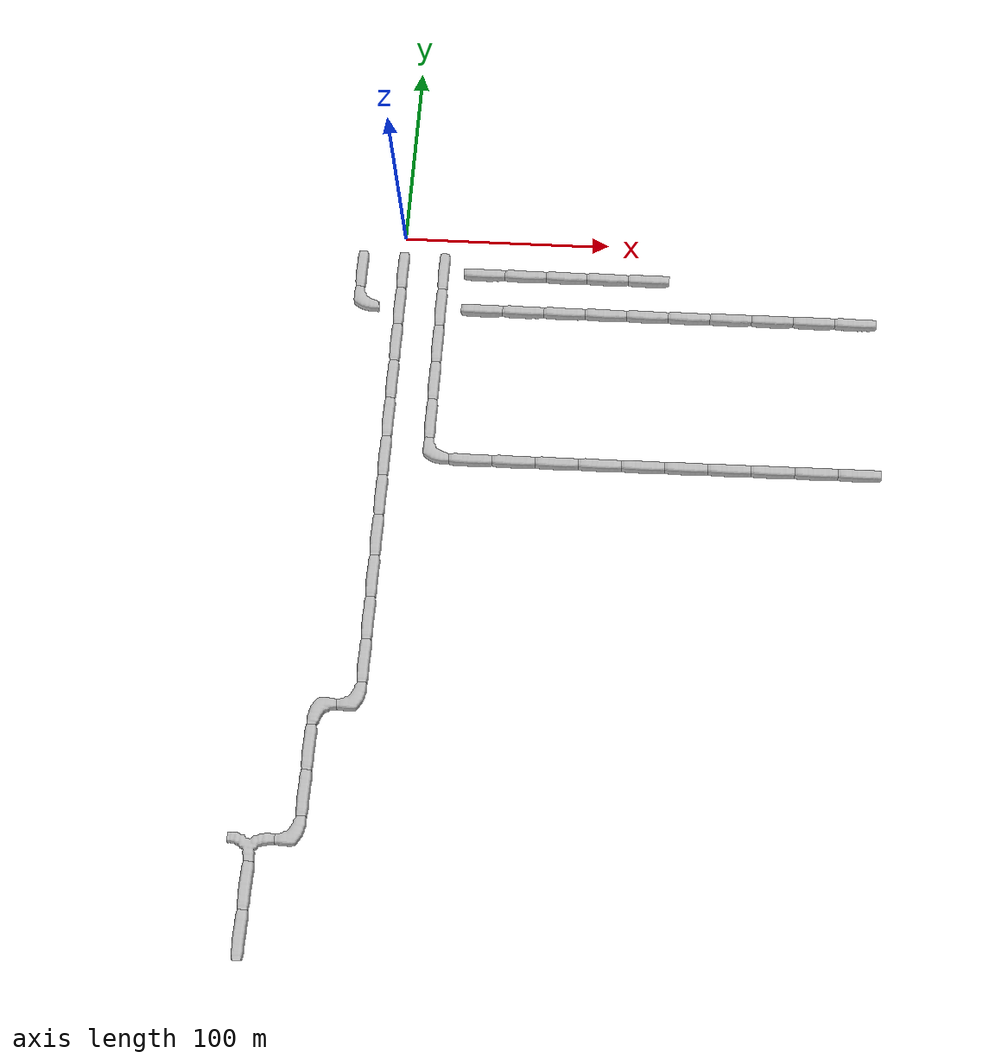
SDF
<sdf version="1.6">
 <world name="cave_8000_16">
  <include>
   <static>true</static>
   <name>cave_1_-1</name>
   <pose>20 -20 0 0 0 0.0</pose>
   <uri>model://cave_straight_20m</uri>
  </include>
  <include>
   <static>true</static>
   <name>cave_1_-2</name>
   <pose>20 -40 0 0 0 0.0</pose>
   <uri>model://cave_straight_20m</uri>
  </include>
  <include>
   <static>true</static>
   <name>cave_1_-3</name>
   <pose>20 -60 0 0 0 0.0</pose>
   <uri>model://cave_straight_20m</uri>
  </include>
  <include>
   <static>true</static>
   <name>cave_1_-4</name>
   <pose>20 -80 0 0 0 0.0</pose>
   <uri>model://cave_straight_20m</uri>
  </include>
  <include>
   <static>true</static>
   <name>cave_1_-5</name>
   <pose>20 -100 0 0 0 0.0</pose>
   <uri>model://cave_straight_20m</uri>
  </include>
  <include>
   <static>true</static>
   <name>cave_1_-6</name>
   <pose>20 -120 0 0 0 0.0</pose>
   <uri>model://cave_L_20m</uri>
  </include>
  <include>
   <static>true</static>
   <name>cave_2_-6</name>
   <pose>40 -120 0 0 0 1.5707963267948966</pose>
   <uri>model://cave_straight_20m</uri>
  </include>
  <include>
   <static>true</static>
   <name>cave_3_-6</name>
   <pose>60 -120 0 0 0 1.5707963267948966</pose>
   <uri>model://cave_straight_20m</uri>
  </include>
  <include>
   <static>true</static>
   <name>cave_4_-6</name>
   <pose>80 -120 0 0 0 1.5707963267948966</pose>
   <uri>model://cave_straight_20m</uri>
  </include>
  <include>
   <static>true</static>
   <name>cave_5_-6</name>
   <pose>100 -120 0 0 0 1.5707963267948966</pose>
   <uri>model://cave_straight_20m</uri>
  </include>
  <include>
   <static>true</static>
   <name>cave_6_-6</name>
   <pose>120 -120 0 0 0 1.5707963267948966</pose>
   <uri>model://cave_straight_20m</uri>
  </include>
  <include>
   <static>true</static>
   <name>cave_7_-6</name>
   <pose>140 -120 0 0 0 1.5707963267948966</pose>
   <uri>model://cave_straight_20m</uri>
  </include>
  <include>
   <static>true</static>
   <name>cave_8_-6</name>
   <pose>160 -120 0 0 0 1.5707963267948966</pose>
   <uri>model://cave_straight_20m</uri>
  </include>
  <include>
   <static>true</static>
   <name>cave_9_-6</name>
   <pose>180 -120 0 0 0 1.5707963267948966</pose>
   <uri>model://cave_straight_20m</uri>
  </include>
  <include>
   <static>true</static>
   <name>cave_10_-6</name>
   <pose>200 -120 0 0 0 1.5707963267948966</pose>
   <uri>model://cave_straight_20m</uri>
  </include>
  <include>
   <static>true</static>
   <name>cave_11_-6</name>
   <pose>220 -120 0 0 0 1.5707963267948966</pose>
   <uri>model://cave_straight_20m</uri>
  </include>
  <include>
   <static>true</static>
   <name>cave_6_-1</name>
   <pose>120 -20 0 0 0 1.5707963267948966</pose>
   <uri>model://cave_straight_20m</uri>
  </include>
  <include>
   <static>true</static>
   <name>cave_5_-1</name>
   <pose>100 -20 0 0 0 1.5707963267948966</pose>
   <uri>model://cave_straight_20m</uri>
  </include>
  <include>
   <static>true</static>
   <name>cave_4_-1</name>
   <pose>80 -20 0 0 0 1.5707963267948966</pose>
   <uri>model://cave_straight_20m</uri>
  </include>
  <include>
   <static>true</static>
   <name>cave_3_-1</name>
   <pose>60 -20 0 0 0 1.5707963267948966</pose>
   <uri>model://cave_straight_20m</uri>
  </include>
  <include>
   <static>true</static>
   <name>cave_2_-1</name>
   <pose>40 -20 0 0 0 1.5707963267948966</pose>
   <uri>model://cave_straight_20m</uri>
  </include>
  <include>
   <static>true</static>
   <name>cave_11_-2</name>
   <pose>220 -40 0 0 0 1.5707963267948966</pose>
   <uri>model://cave_straight_20m</uri>
  </include>
  <include>
   <static>true</static>
   <name>cave_10_-2</name>
   <pose>200 -40 0 0 0 1.5707963267948966</pose>
   <uri>model://cave_straight_20m</uri>
  </include>
  <include>
   <static>true</static>
   <name>cave_9_-2</name>
   <pose>180 -40 0 0 0 1.5707963267948966</pose>
   <uri>model://cave_straight_20m</uri>
  </include>
  <include>
   <static>true</static>
   <name>cave_8_-2</name>
   <pose>160 -40 0 0 0 1.5707963267948966</pose>
   <uri>model://cave_straight_20m</uri>
  </include>
  <include>
   <static>true</static>
   <name>cave_7_-2</name>
   <pose>140 -40 0 0 0 1.5707963267948966</pose>
   <uri>model://cave_straight_20m</uri>
  </include>
  <include>
   <static>true</static>
   <name>cave_6_-2</name>
   <pose>120 -40 0 0 0 1.5707963267948966</pose>
   <uri>model://cave_straight_20m</uri>
  </include>
  <include>
   <static>true</static>
   <name>cave_5_-2</name>
   <pose>100 -40 0 0 0 1.5707963267948966</pose>
   <uri>model://cave_straight_20m</uri>
  </include>
  <include>
   <static>true</static>
   <name>cave_4_-2</name>
   <pose>80 -40 0 0 0 1.5707963267948966</pose>
   <uri>model://cave_straight_20m</uri>
  </include>
  <include>
   <static>true</static>
   <name>cave_3_-2</name>
   <pose>60 -40 0 0 0 1.5707963267948966</pose>
   <uri>model://cave_straight_20m</uri>
  </include>
  <include>
   <static>true</static>
   <name>cave_2_-2</name>
   <pose>40 -40 0 0 0 1.5707963267948966</pose>
   <uri>model://cave_straight_20m</uri>
  </include>
  <include>
   <static>true</static>
   <name>cave_0_-1</name>
   <pose>0 -20 0 0 0 0.0</pose>
   <uri>model://cave_straight_20m</uri>
  </include>
  <include>
   <static>true</static>
   <name>cave_0_-2</name>
   <pose>0 -40 0 0 0 0.0</pose>
   <uri>model://cave_straight_20m</uri>
  </include>
  <include>
   <static>true</static>
   <name>cave_0_-3</name>
   <pose>0 -60 0 0 0 0.0</pose>
   <uri>model://cave_straight_20m</uri>
  </include>
  <include>
   <static>true</static>
   <name>cave_0_-4</name>
   <pose>0 -80 0 0 0 0.0</pose>
   <uri>model://cave_straight_20m</uri>
  </include>
  <include>
   <static>true</static>
   <name>cave_0_-5</name>
   <pose>0 -100 0 0 0 0.0</pose>
   <uri>model://cave_straight_20m</uri>
  </include>
  <include>
   <static>true</static>
   <name>cave_0_-6</name>
   <pose>0 -120 0 0 0 0.0</pose>
   <uri>model://cave_straight_20m</uri>
  </include>
  <include>
   <static>true</static>
   <name>cave_0_-7</name>
   <pose>0 -140 0 0 0 0.0</pose>
   <uri>model://cave_straight_20m</uri>
  </include>
  <include>
   <static>true</static>
   <name>cave_0_-8</name>
   <pose>0 -160 0 0 0 0.0</pose>
   <uri>model://cave_straight_20m</uri>
  </include>
  <include>
   <static>true</static>
   <name>cave_0_-9</name>
   <pose>0 -180 0 0 0 0.0</pose>
   <uri>model://cave_straight_20m</uri>
  </include>
  <include>
   <static>true</static>
   <name>cave_0_-10</name>
   <pose>0 -200 0 0 0 0.0</pose>
   <uri>model://cave_straight_20m</uri>
  </include>
  <include>
   <static>true</static>
   <name>cave_0_-11</name>
   <pose>0 -220 0 0 0 0.0</pose>
   <uri>model://cave_straight_20m</uri>
  </include>
  <include>
   <static>true</static>
   <name>cave_0_-12</name>
   <pose>0 -240 0 0 0 1.5707963267948966</pose>
   <uri>model://cave_L_20m</uri>
  </include>
  <include>
   <static>true</static>
   <name>cave_-1_-12</name>
   <pose>-20 -240 0 0 0 -1.5707963267948966</pose>
   <uri>model://cave_L_20m</uri>
  </include>
  <include>
   <static>true</static>
   <name>cave_-1_-13</name>
   <pose>-20 -260 0 0 0 0.0</pose>
   <uri>model://cave_straight_20m</uri>
  </include>
  <include>
   <static>true</static>
   <name>cave_-1_-14</name>
   <pose>-20 -280 0 0 0 0.0</pose>
   <uri>model://cave_straight_20m</uri>
  </include>
  <include>
   <static>true</static>
   <name>cave_-1_-15</name>
   <pose>-20 -300 0 0 0 1.5707963267948966</pose>
   <uri>model://cave_L_20m</uri>
  </include>
  <include>
   <static>true</static>
   <name>cave_-2_-15</name>
   <pose>-40 -300 0 0 0 3.141592653589793</pose>
   <uri>model://cave_3way_20m</uri>
  </include>
  <include>
   <static>true</static>
   <name>cave_-2_-16</name>
   <pose>-40 -320 0 0 0 0.0</pose>
   <uri>model://cave_straight_20m</uri>
  </include>
  <include>
   <static>true</static>
   <name>cave_-2_-17</name>
   <pose>-40 -340 0 0 0 0.0</pose>
   <uri>model://cave_straight_20m</uri>
  </include>
  <include>
   <static>true</static>
   <name>cave_-1_-1</name>
   <pose>-20 -20 0 0 0 0.0</pose>
   <uri>model://cave_straight_20m</uri>
  </include>
  <include>
   <static>true</static>
   <name>cave_-1_-2</name>
   <pose>-20 -40 0 0 0 0.0</pose>
   <uri>model://cave_L_20m</uri>
  </include>
 </world>
</sdf>
